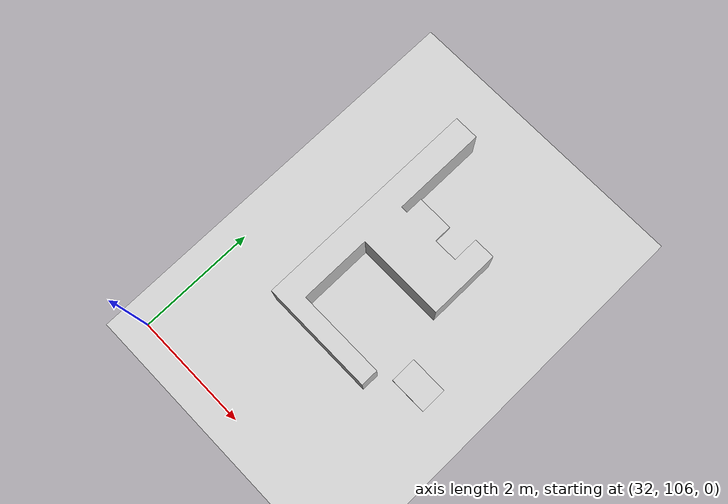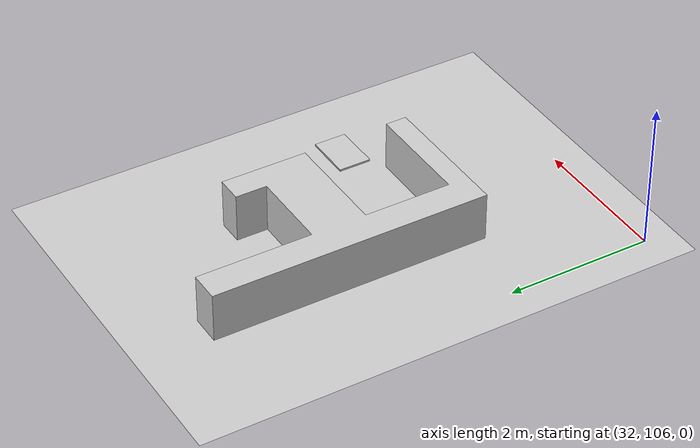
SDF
<sdf version='1.10'>
  <world name='default'>
    <physics name='1ms' type='ignored'>
      <max_step_size>0.001</max_step_size>
      <real_time_factor>1</real_time_factor>
      <real_time_update_rate>1000</real_time_update_rate>
    </physics>
    <plugin name='gz::sim::systems::Physics' filename='gz-sim-physics-system'/>
    <plugin name='gz::sim::systems::UserCommands' filename='gz-sim-user-commands-system'/>
    <plugin name='gz::sim::systems::SceneBroadcaster' filename='gz-sim-scene-broadcaster-system'/>
    <plugin name='gz::sim::systems::Contact' filename='gz-sim-contact-system'/>
    <gravity>0 0 -9.8000000000000007</gravity>
    <magnetic_field>5.5644999999999998e-06 2.2875799999999999e-05 -4.2388400000000002e-05</magnetic_field>
    <atmosphere type='adiabatic'/>
    <scene>
      <ambient>0.400000006 0.400000006 0.400000006 1</ambient>
      <background>0.699999988 0.699999988 0.699999988 1</background>
      <shadows>true</shadows>
    </scene>
    <model name='ground_plane'>
      <static>true</static>
      <link name='link'>
        <collision name='collision'>
          <geometry>
            <plane>
              <normal>0 0 1</normal>
              <size>100 100</size>
            </plane>
          </geometry>
          <surface>
            <friction>
              <ode/>
            </friction>
            <bounce/>
            <contact/>
          </surface>
        </collision>
        <visual name='visual'>
          <geometry>
            <plane>
              <normal>0 0 1</normal>
              <size>100 100</size>
            </plane>
          </geometry>
          <material>
            <ambient>0.800000012 0.800000012 0.800000012 1</ambient>
            <diffuse>0.800000012 0.800000012 0.800000012 1</diffuse>
            <specular>0.800000012 0.800000012 0.800000012 1</specular>
          </material>
        </visual>
        <pose>0 0 0 0 0 0</pose>
        <inertial>
          <pose>0 0 0 0 0 0</pose>
          <mass>1</mass>
          <inertia>
            <ixx>1</ixx>
            <ixy>0</ixy>
            <ixz>0</ixz>
            <iyy>1</iyy>
            <iyz>0</iyz>
            <izz>1</izz>
          </inertia>
        </inertial>
        <enable_wind>false</enable_wind>
      </link>
      <pose>0 0 0 0 0 0</pose>
      <self_collide>false</self_collide>
    </model>
    <include>
      <uri>file:///root/limo_ws/install/limo_description/share/limo_description/worlds/world_povo_resources</uri>
      <name>Povo</name>
      <pose>32.6017536 109.0004032 0 0 0 0</pose>
    </include>
    <light name='sun' type='directional'>
      <pose>0 0 10 0 0 0</pose>
      <cast_shadows>true</cast_shadows>
      <intensity>1</intensity>
      <direction>-0.5 0.10000000000000001 -0.90000000000000002</direction>
      <diffuse>0.800000012 0.800000012 0.800000012 1</diffuse>
      <specular>0.200000003 0.200000003 0.200000003 1</specular>
      <attenuation>
        <range>1000</range>
        <linear>0.01</linear>
        <constant>0.90000000000000002</constant>
        <quadratic>0.001</quadratic>
      </attenuation>
      <spot>
        <inner_angle>0</inner_angle>
        <outer_angle>0</outer_angle>
        <falloff>0</falloff>
      </spot>
    </light>
  </world>
</sdf>

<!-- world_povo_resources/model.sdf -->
<sdf version="1.5">
  <model name="Povo">
    <static>true</static>

    <link name="link">
      <collision name="collision">
        <geometry>
          <mesh>
            <!--for Povo-->
            <!--for Laboratory-->
            <uri>file:///root/limo_ws/install/limo_description/share/limo_description/worlds/world_povo_resources/meshes/World.stl</uri>
          </mesh>
        </geometry>
      </collision>

      <visual name="visual1">
        <geometry>
          <mesh>
            <!--for Povo-->
            <!--for Laboratory-->
            <uri>file:///root/limo_ws/install/limo_description/share/limo_description/worlds/world_povo_resources/meshes/World.stl</uri>
          </mesh>
        </geometry>

        <material>
          <ambient>0.3 0.3 0.3 1</ambient>
          <diffuse>0.8 0.8 0.8 1</diffuse>
          <specular>0.1 0.1 0.1 1</specular>
        </material>
      </visual>
    </link>
  </model>
</sdf>
